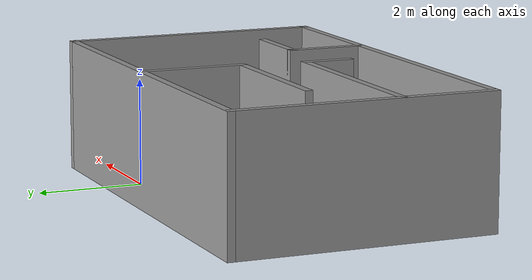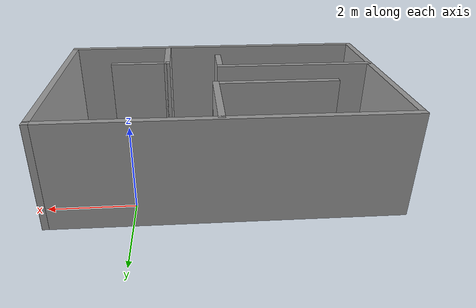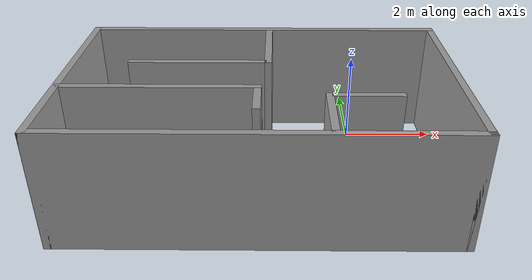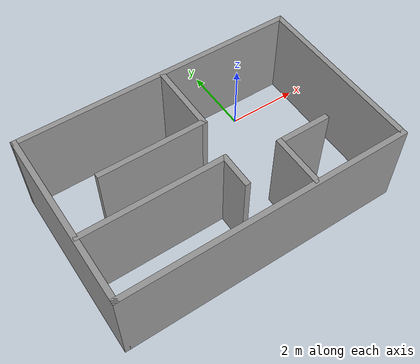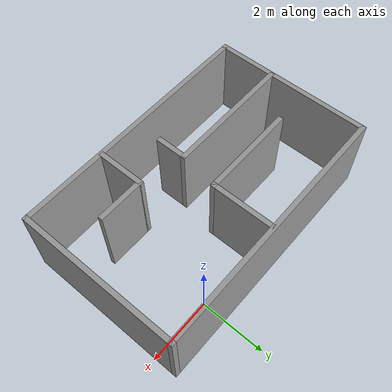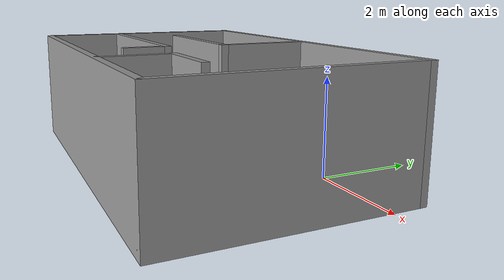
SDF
<?xml version='1.0'?>
<sdf version='1.7'>
  <model name='room'>
    <pose>-2.05228 -1.77089 0 0 -0 0</pose>
    <link name='Wall_10'>
      <collision name='Wall_10_Collision'>
        <geometry>
          <box>
            <size>2 0.15 2.5</size>
          </box>
        </geometry>
        <pose>0 0 1.25 0 -0 0</pose>
      </collision>
      <visual name='Wall_10_Visual'>
        <pose>0 0 1.25 0 -0 0</pose>
        <geometry>
          <box>
            <size>2 0.15 2.5</size>
          </box>
        </geometry>
        <material>
          <script>
            <uri>file://media/materials/scripts/gazebo.material</uri>
            <name>Gazebo/Grey</name>
          </script>
          <ambient>1 1 1 1</ambient>
        </material>
        <meta>
          <layer>0</layer>
        </meta>
      </visual>
      <pose>0.147161 1.42826 0 0 -0 -1.5708</pose>
    </link>
    <link name='Wall_11'>
      <collision name='Wall_11_Collision'>
        <geometry>
          <box>
            <size>3 0.15 2.5</size>
          </box>
        </geometry>
        <pose>0 0 1.25 0 -0 0</pose>
      </collision>
      <visual name='Wall_11_Visual'>
        <pose>0 0 1.25 0 -0 0</pose>
        <geometry>
          <box>
            <size>3 0.15 2.5</size>
          </box>
        </geometry>
        <material>
          <script>
            <uri>file://media/materials/scripts/gazebo.material</uri>
            <name>Gazebo/Grey</name>
          </script>
          <ambient>1 1 1 1</ambient>
        </material>
        <meta>
          <layer>0</layer>
        </meta>
      </visual>
      <pose>-1.27784 0.503265 0 0 -0 3.14159</pose>
    </link>
    <link name='Wall_13'>
      <collision name='Wall_13_Collision'>
        <geometry>
          <box>
            <size>4 0.15 2.5</size>
          </box>
        </geometry>
        <pose>0 0 1.25 0 -0 0</pose>
      </collision>
      <visual name='Wall_13_Visual'>
        <pose>0 0 1.25 0 -0 0</pose>
        <geometry>
          <box>
            <size>4 0.15 2.5</size>
          </box>
        </geometry>
        <material>
          <script>
            <uri>file://media/materials/scripts/gazebo.material</uri>
            <name>Gazebo/Grey</name>
          </script>
          <ambient>1 1 1 1</ambient>
        </material>
        <meta>
          <layer>0</layer>
        </meta>
      </visual>
      <pose>-1.96247 -0.682197 0 0 -0 0</pose>
    </link>
    <link name='Wall_14'>
      <collision name='Wall_14_Collision'>
        <geometry>
          <box>
            <size>1 0.15 2.5</size>
          </box>
        </geometry>
        <pose>0 0 1.25 0 -0 0</pose>
      </collision>
      <visual name='Wall_14_Visual'>
        <pose>0 0 1.25 0 -0 0</pose>
        <geometry>
          <box>
            <size>1 0.15 2.5</size>
          </box>
        </geometry>
        <material>
          <script>
            <uri>file://media/materials/scripts/gazebo.material</uri>
            <name>Gazebo/Grey</name>
          </script>
          <ambient>1 1 1 1</ambient>
        </material>
        <meta>
          <layer>0</layer>
        </meta>
      </visual>
      <pose>-0.037474 -1.1072 0 0 -0 -1.5708</pose>
    </link>
    <link name='Wall_16'>
      <collision name='Wall_16_Collision'>
        <geometry>
          <box>
            <size>1.5 0.15 2.5</size>
          </box>
        </geometry>
        <pose>0 0 1.25 0 -0 0</pose>
      </collision>
      <visual name='Wall_16_Visual'>
        <pose>0 0 1.25 0 -0 0</pose>
        <geometry>
          <box>
            <size>1.5 0.15 2.5</size>
          </box>
        </geometry>
        <material>
          <script>
            <uri>file://media/materials/scripts/gazebo.material</uri>
            <name>Gazebo/Grey</name>
          </script>
          <ambient>1 1 1 1</ambient>
        </material>
        <meta>
          <layer>0</layer>
        </meta>
      </visual>
      <pose>1.3234 -1.68935 0 0 -0 1.5708</pose>
    </link>
    <link name='Wall_17'>
      <collision name='Wall_17_Collision'>
        <geometry>
          <box>
            <size>1.5 0.15 2.5</size>
          </box>
        </geometry>
        <pose>0 0 1.25 0 -0 0</pose>
      </collision>
      <visual name='Wall_17_Visual'>
        <pose>0 0 1.25 0 -0 0</pose>
        <geometry>
          <box>
            <size>1.5 0.15 2.5</size>
          </box>
        </geometry>
        <material>
          <script>
            <uri>file://media/materials/scripts/gazebo.material</uri>
            <name>Gazebo/Grey</name>
          </script>
          <ambient>1 1 1 1</ambient>
        </material>
        <meta>
          <layer>0</layer>
        </meta>
      </visual>
      <pose>1.9984 -1.01435 0 0 -0 0</pose>
    </link>
    <link name='Wall_5'>
      <collision name='Wall_5_Collision'>
        <geometry>
          <box>
            <size>8 0.15 2.5</size>
          </box>
        </geometry>
        <pose>0 0 1.25 0 -0 0</pose>
      </collision>
      <visual name='Wall_5_Visual'>
        <pose>0 0 1.25 0 -0 0</pose>
        <geometry>
          <box>
            <size>8 0.15 2.5</size>
          </box>
        </geometry>
        <material>
          <script>
            <uri>file://media/materials/scripts/gazebo.material</uri>
            <name>Gazebo/Grey</name>
          </script>
          <ambient>1 1 1 1</ambient>
        </material>
        <meta>
          <layer>0</layer>
        </meta>
      </visual>
      <pose>0 2.425 0 0 -0 3.14159</pose>
    </link>
    <link name='Wall_6'>
      <collision name='Wall_6_Collision'>
        <geometry>
          <box>
            <size>5 0.15 2.5</size>
          </box>
        </geometry>
        <pose>0 0 1.25 0 -0 0</pose>
      </collision>
      <visual name='Wall_6_Visual'>
        <pose>0 0 1.25 0 -0 0</pose>
        <geometry>
          <box>
            <size>5 0.15 2.5</size>
          </box>
        </geometry>
        <material>
          <script>
            <uri>file://media/materials/scripts/gazebo.material</uri>
            <name>Gazebo/Grey</name>
          </script>
          <ambient>1 1 1 1</ambient>
        </material>
        <meta>
          <layer>0</layer>
        </meta>
      </visual>
      <pose>-3.925 -0 0 0 -0 -1.5708</pose>
    </link>
    <link name='Wall_7'>
      <collision name='Wall_7_Collision'>
        <geometry>
          <box>
            <size>8 0.15 2.5</size>
          </box>
        </geometry>
        <pose>0 0 1.25 0 -0 0</pose>
      </collision>
      <visual name='Wall_7_Visual'>
        <pose>0 0 1.25 0 -0 0</pose>
        <geometry>
          <box>
            <size>8 0.15 2.5</size>
          </box>
        </geometry>
        <material>
          <script>
            <uri>file://media/materials/scripts/gazebo.material</uri>
            <name>Gazebo/Grey</name>
          </script>
          <ambient>1 1 1 1</ambient>
        </material>
        <meta>
          <layer>0</layer>
        </meta>
      </visual>
      <pose>0 -2.425 0 0 -0 0</pose>
    </link>
    <link name='Wall_8'>
      <collision name='Wall_8_Collision'>
        <geometry>
          <box>
            <size>5 0.15 2.5</size>
          </box>
        </geometry>
        <pose>0 0 1.25 0 -0 0</pose>
      </collision>
      <visual name='Wall_8_Visual'>
        <pose>0 0 1.25 0 -0 0</pose>
        <geometry>
          <box>
            <size>5 0.15 2.5</size>
          </box>
        </geometry>
        <material>
          <script>
            <uri>file://media/materials/scripts/gazebo.material</uri>
            <name>Gazebo/Grey</name>
          </script>
          <ambient>1 1 1 1</ambient>
        </material>
        <meta>
          <layer>0</layer>
        </meta>
      </visual>
      <pose>3.925 -0 0 0 -0 1.5708</pose>
    </link>
    <static>1</static>
  </model>
</sdf>
